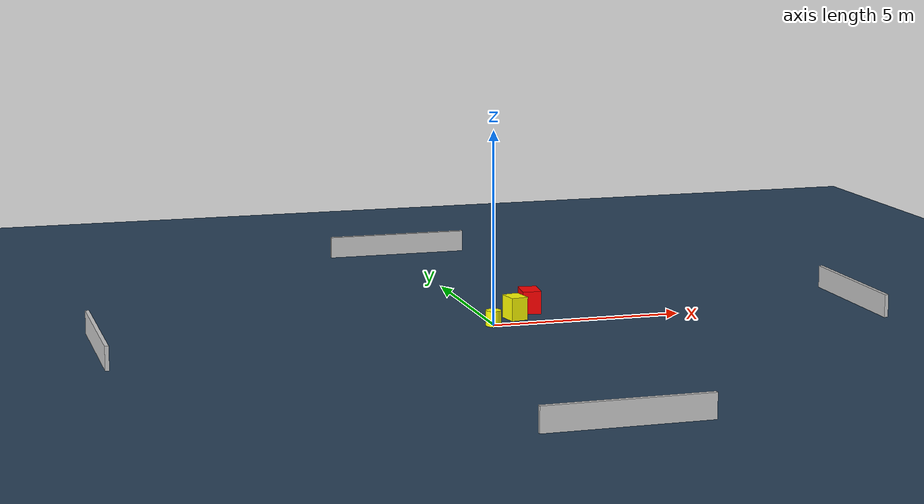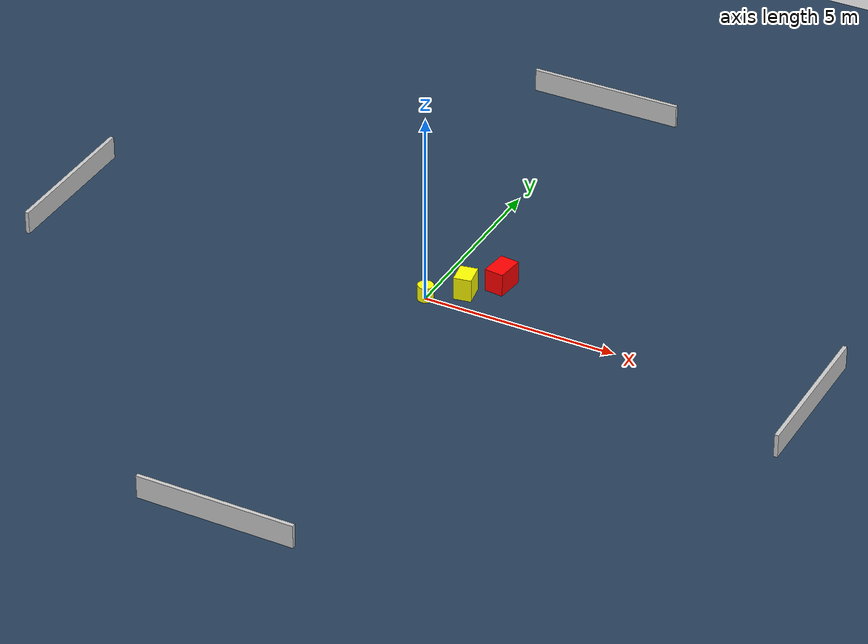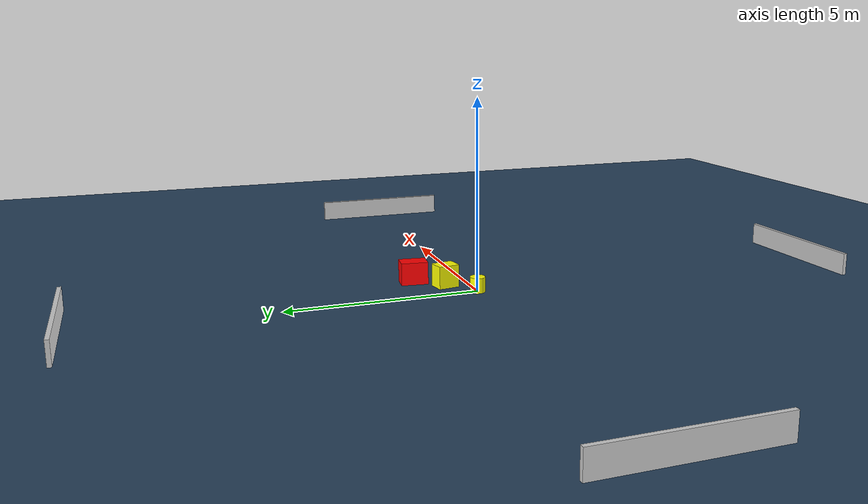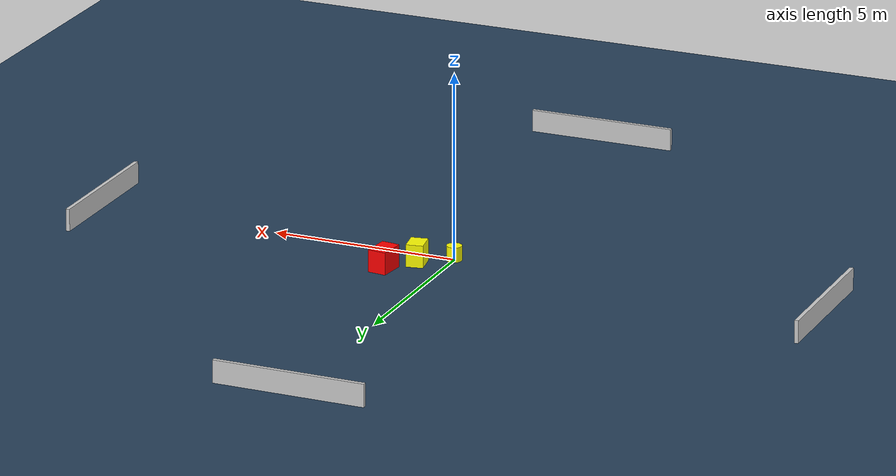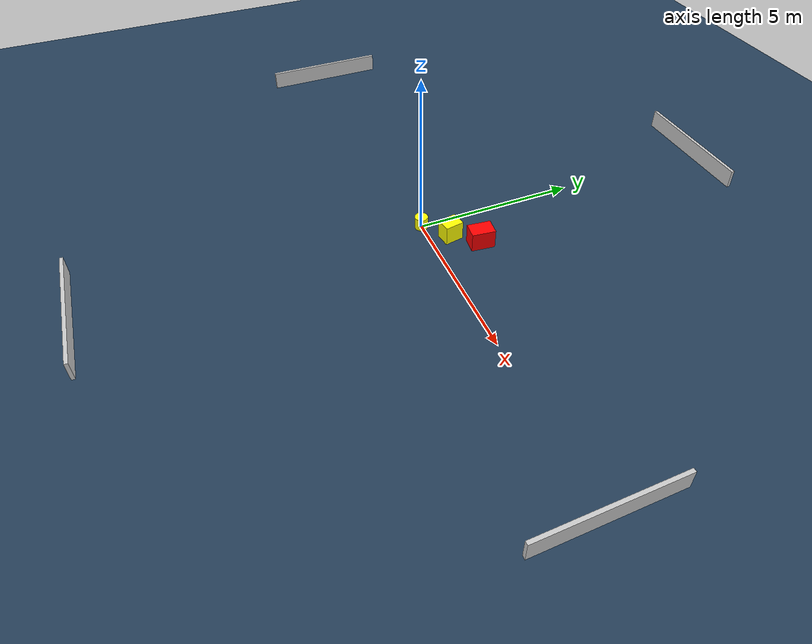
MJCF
<?xml version="1.0" ?>
<mujoco model="generated_environment">
  <option timestep="0.01" integrator="RK4" cone="elliptic"/>
  <default>
    <geom density="1"/>
  </default>
  <asset>
    <texture builtin="gradient" height="3072" name="skybox" rgb1="0.3 0.5 0.7" rgb2="0 0 0" type="skybox" width="512"/>
    <texture builtin="checker" height="300" name="groundplane" rgb1="0.2 0.3 0.4" rgb2="0.1 0.2 0.3" type="2d" width="300"/>
    <material name="groundplane" reflectance="0.2" texrepeat="5 5" texture="groundplane"/>
  </asset>
  <worldbody>
    <light dir="0 0 -1" directional="true" pos="0 0 1.5"/>
    <geom condim="3" friction="0.5 0.005 0.001" material="groundplane" name="floor" pos="0 0 0" size="0 0 0.05" type="plane"/>
    <body name="walls">
      <geom name="wall_1" condim="4" pos="-10.0 0.0 0.3" rgba="0.800000011920929 0.800000011920929 0.800000011920929 1.0" size="0.05 2.0 0.3" type="box"/>
      <geom name="wall_2" condim="4" pos="10.0 0.0 0.3" rgba="0.800000011920929 0.800000011920929 0.800000011920929 1.0" size="0.05 2.0 0.3" type="box"/>
      <geom name="wall_3" condim="4" pos="0.0 -10.0 0.3" rgba="0.800000011920929 0.800000011920929 0.800000011920929 1.0" size="2.0 0.05 0.3" type="box"/>
      <geom name="wall_4" condim="4" pos="0.0 10.0 0.3" rgba="0.800000011920929 0.800000011920929 0.800000011920929 1.0" size="2.0 0.05 0.3" type="box"/>
    </body>
    <body name="robot">
      <joint name="joint_x" type="slide" pos="0 0 0" axis="1 0 0"/>
      <joint name="joint_y" type="slide" pos="0 0 0" axis="0 1 0"/>
      <geom name="robot" type="cylinder" pos="0.0 0.0 0.2" size="0.2 0.2 0.0" mass="5.0" friction="1.0 0.005 0.0001" condim="4" rgba="1.0 1.0 0.0 1.0"/>
    </body>
    <body name="obstacle_1_movable">
      <geom name="obstacle_1_movable" condim="4" pos="0.7635660993237121 0.6177683776179168 0.3" euler="0 0 99.82348695855248" friction="0.0 0.005 0.001" rgba="1.0 1.0 0.0 1.0" size="0.286600570462055 0.22330918951215847 0.3" type="box" mass="0.1"/>
      <joint type="free"/>
    </body>
    <body name="obstacle_2_static">
      <geom name="obstacle_2_static" condim="4" pos="1.3768784257549493 1.318413647636407 0.3" euler="0 0 263.5342927664492" friction="0.0 0.005 0.001" rgba="1.0 0.0 0.0 1.0" size="0.3581361126433085 0.24660446788014553 0.3" type="box"/>
    </body>
  </worldbody>
  <actuator>
    <motor name="actuator_x" joint="joint_x" gear="1" ctrlrange="-1 1"/>
    <motor name="actuator_y" joint="joint_y" gear="1" ctrlrange="-1 1"/>
  </actuator>
</mujoco>
